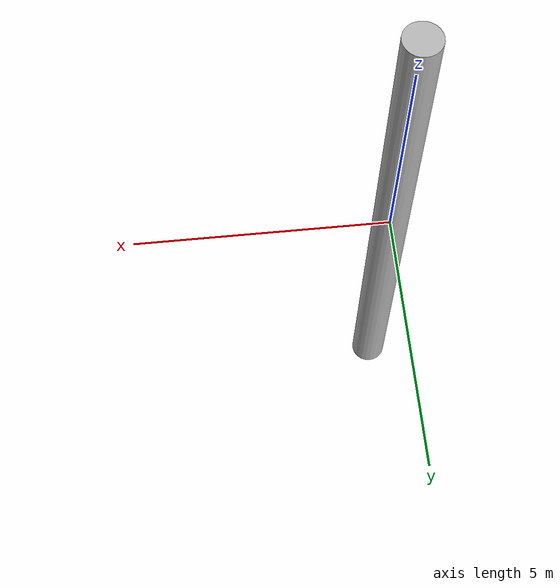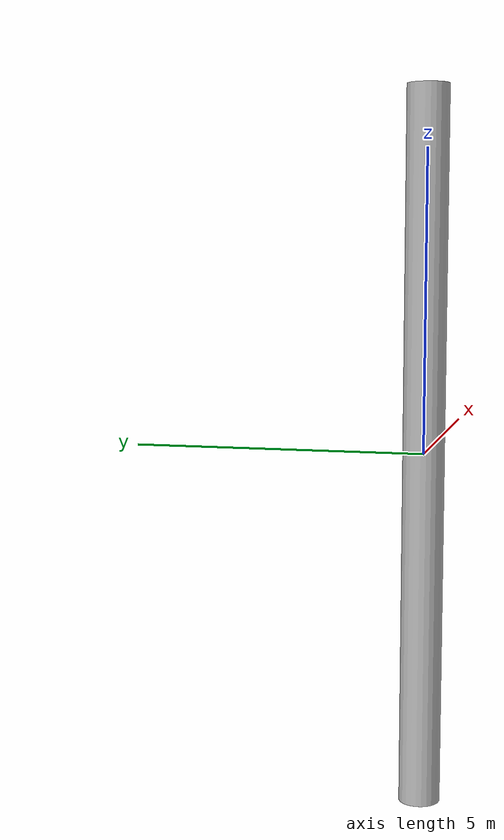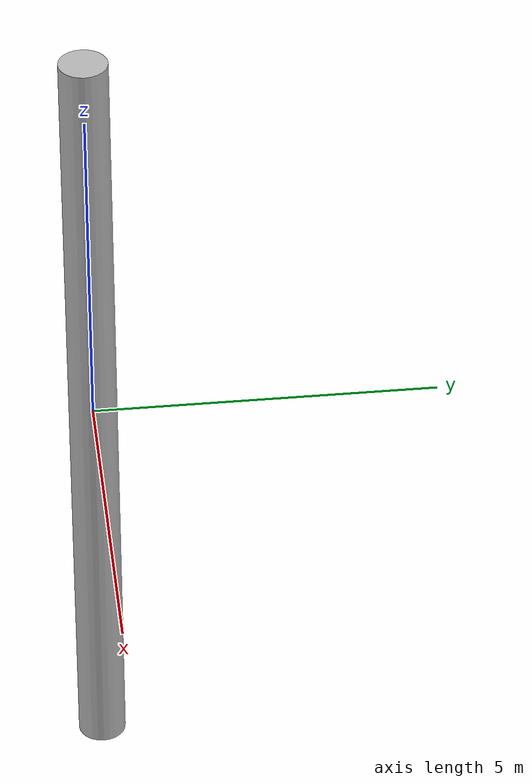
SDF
<sdf version="1.5">
  <model name="Cylinder">
    <static>true</static>
    <link name="link">
      <collision name="collision">
        <geometry>
          <cylinder>
            <radius>0.35</radius>
            <length>12.0</length>
          </cylinder>
        </geometry>
      </collision>
      <visual name="visual">
        <geometry>
          <cylinder>
            <radius>0.35</radius>
            <length>12.0</length>
          </cylinder>
        </geometry>
      </visual>
    </link>
  </model>
</sdf>
